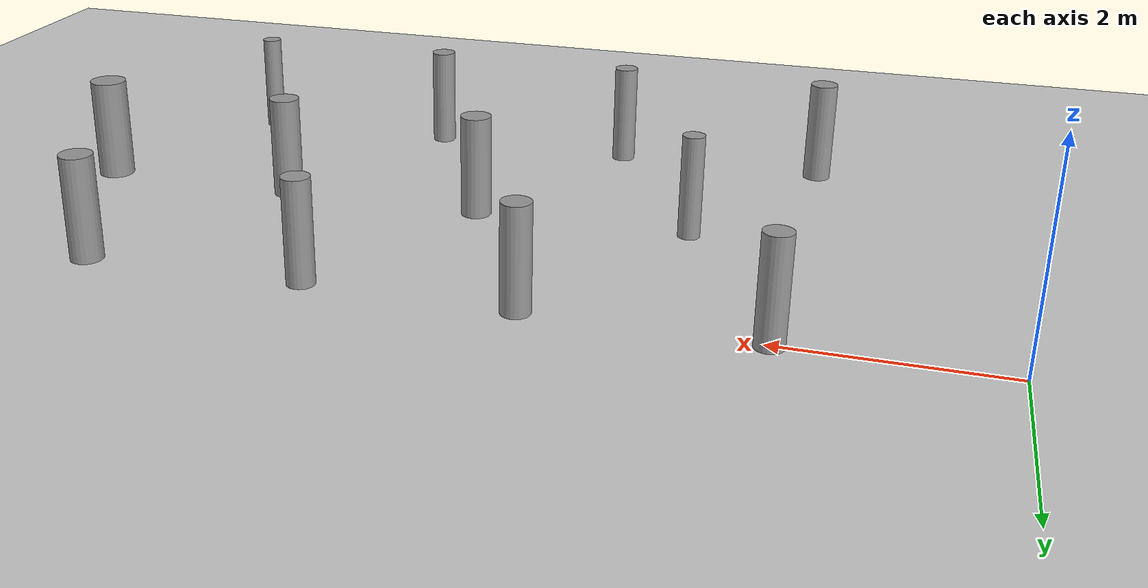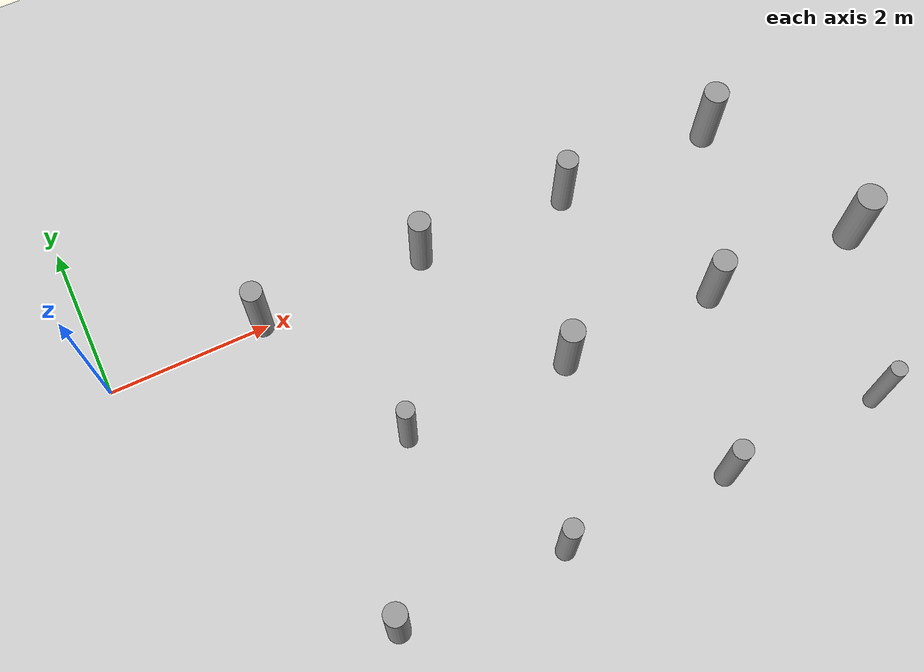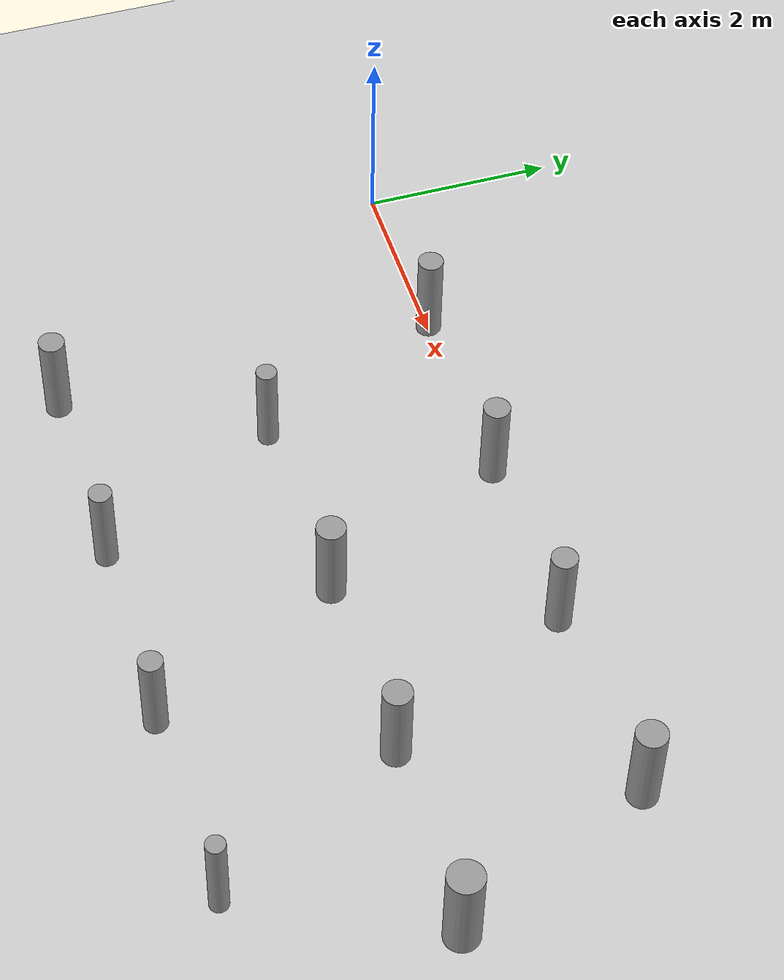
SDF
<sdf version="1.6">
 <world name="default">
  <light name="sun" type="directional">
   <pose>0 0 10 0 -0 0</pose>
   <diffuse>0.8 0.8 0.8 1</diffuse>
   <specular>0.1 0.1 0.1 1</specular>
   <attenuation>
    <range>1000</range>
    <constant>0.9</constant>
    <linear>0.01</linear>
    <quadratic>0.001</quadratic>
   </attenuation>
   <direction>-0.5 0.5 -1</direction>
  </light>
  <model name="ground_plane">
   <static>1</static>
   <link name="link">
    <collision name="collision">
     <geometry><plane><normal>0 0 1</normal><size>100 100</size></plane></geometry>
     <surface><friction><ode><mu>100</mu><mu2>50</mu2></ode></friction></surface>
    </collision>
    <visual name="visual">
     <cast_shadows>0</cast_shadows>
     <geometry><plane><normal>0 0 1</normal><size>100 100</size></plane></geometry>
     <material>
      <script><uri>file://media/materials/scripts/gazebo.material</uri><name>Gazebo/Grey</name></script>
     </material>
    </visual>
   </link>
  </model>
  <gravity>0 0 -9.8</gravity>
  <magnetic_field>6e-06 2.3e-05 -4.2e-05</magnetic_field>
  <atmosphere type="adiabatic"/>
  <physics name="default_physics" default="0" type="ode">
   <max_step_size>0.001</max_step_size>
   <real_time_factor>1</real_time_factor>
   <real_time_update_rate>1000</real_time_update_rate>
  </physics>
  <scene><ambient>0.4 0.4 0.4 1</ambient><background>0.7 0.7 0.7 1</background><shadows>1</shadows></scene>
  <spherical_coordinates>
   <surface_model>EARTH_WGS84</surface_model>
   <latitude_deg>0</latitude_deg>
   <longitude_deg>0</longitude_deg>
   <elevation>0</elevation>
   <heading_deg>0</heading_deg>
  </spherical_coordinates>
  <model name="unit_cylinder_0_5">
   <pose>1.94918 0.017503 0.499997 0 0 -3e-06</pose>
   <link name="link">
    <inertial>
     <mass>1</mass>
     <inertia><ixx>0.145833</ixx><ixy>0</ixy><ixz>0</ixz><iyy>0.145833</iyy><iyz>0</iyz><izz>0.125</izz></inertia>
    </inertial>
    <collision name="collision">
     <geometry><cylinder><radius>0.130999</radius><length>1</length></cylinder></geometry>
    </collision>
    <visual name="visual">
     <geometry><cylinder><radius>0.130999</radius><length>1</length></cylinder></geometry>
     <material>
      <script><name>Gazebo/Grey</name><uri>file://media/materials/scripts/gazebo.material</uri></script>
     </material>
    </visual>
   </link>
  </model>
  <model name="unit_cylinder_0_6">
   <pose>2.9391 -2.02718 0.499998 0 0 -7e-06</pose>
   <link name="link">
    <inertial>
     <mass>1</mass>
     <inertia><ixx>0.145833</ixx><ixy>0</ixy><ixz>0</ixz><iyy>0.145833</iyy><iyz>0</iyz><izz>0.125</izz></inertia>
    </inertial>
    <collision name="collision">
     <geometry><cylinder><radius>0.106456</radius><length>1</length></cylinder></geometry>
    </collision>
    <visual name="visual">
     <geometry><cylinder><radius>0.106456</radius><length>1</length></cylinder></geometry>
     <material>
      <script><name>Gazebo/Grey</name><uri>file://media/materials/scripts/gazebo.material</uri></script>
     </material>
    </visual>
   </link>
  </model>
  <model name="unit_cylinder_0_8">
   <pose>5.01725 -1.97681 0.499996 0 -0 0</pose>
   <link name="link">
    <inertial>
     <mass>1</mass>
     <inertia><ixx>0.145833</ixx><ixy>0</ixy><ixz>0</ixz><iyy>0.145833</iyy><iyz>0</iyz><izz>0.125</izz></inertia>
    </inertial>
    <collision name="collision">
     <geometry><cylinder><radius>0.146876</radius><length>1</length></cylinder></geometry>
    </collision>
    <visual name="visual">
     <geometry><cylinder><radius>0.146876</radius><length>1</length></cylinder></geometry>
     <material>
      <script><name>Gazebo/Grey</name><uri>file://media/materials/scripts/gazebo.material</uri></script>
     </material>
    </visual>
   </link>
  </model>
  <model name="unit_cylinder_0_9">
   <pose>4.04526 0.017581 0.499995 0 -0 3e-06</pose>
   <link name="link">
    <inertial>
     <mass>1</mass>
     <inertia><ixx>0.145833</ixx><ixy>0</ixy><ixz>0</ixz><iyy>0.145833</iyy><iyz>0</iyz><izz>0.125</izz></inertia>
    </inertial>
    <collision name="collision">
     <geometry><cylinder><radius>0.13639</radius><length>1</length></cylinder></geometry>
    </collision>
    <visual name="visual">
     <geometry><cylinder><radius>0.13639</radius><length>1</length></cylinder></geometry>
     <material>
      <script><name>Gazebo/Grey</name><uri>file://media/materials/scripts/gazebo.material</uri></script>
     </material>
    </visual>
   </link>
  </model>
  <model name="unit_cylinder_0_10">
   <pose>5.98918 0.017637 0.499996 0 0 -1e-06</pose>
   <link name="link">
    <inertial>
     <mass>1</mass>
     <inertia><ixx>0.145833</ixx><ixy>0</ixy><ixz>0</ixz><iyy>0.145833</iyy><iyz>0</iyz><izz>0.125</izz></inertia>
    </inertial>
    <collision name="collision">
     <geometry><cylinder><radius>0.131303</radius><length>1</length></cylinder></geometry>
    </collision>
    <visual name="visual">
     <geometry><cylinder><radius>0.131303</radius><length>1</length></cylinder></geometry>
     <material>
      <script><name>Gazebo/Grey</name><uri>file://media/materials/scripts/gazebo.material</uri></script>
     </material>
    </visual>
   </link>
  </model>
  <model name="unit_cylinder_0_11">
   <pose>6.99462 -1.94305 0.499995 0 -0 0</pose>
   <link name="link">
    <inertial>
     <mass>1</mass>
     <inertia><ixx>0.145833</ixx><ixy>0</ixy><ixz>0</ixz><iyy>0.145833</iyy><iyz>0</iyz><izz>0.125</izz></inertia>
    </inertial>
    <collision name="collision">
     <geometry><cylinder><radius>0.145289</radius><length>1</length></cylinder></geometry>
    </collision>
    <visual name="visual">
     <geometry><cylinder><radius>0.145289</radius><length>1</length></cylinder></geometry>
     <material>
      <script><name>Gazebo/Grey</name><uri>file://media/materials/scripts/gazebo.material</uri></script>
     </material>
    </visual>
   </link>
  </model>
  <model name="unit_cylinder_0_12">
   <pose>8.06711 0.084713 0.499996 0 -0 1e-06</pose>
   <link name="link">
    <inertial>
     <mass>1</mass>
     <inertia><ixx>0.145833</ixx><ixy>0</ixy><ixz>0</ixz><iyy>0.145833</iyy><iyz>0</iyz><izz>0.125</izz></inertia>
    </inertial>
    <collision name="collision">
     <geometry><cylinder><radius>0.15454</radius><length>1</length></cylinder></geometry>
    </collision>
    <visual name="visual">
     <geometry><cylinder><radius>0.15454</radius><length>1</length></cylinder></geometry>
     <material>
      <script><name>Gazebo/Grey</name><uri>file://media/materials/scripts/gazebo.material</uri></script>
     </material>
    </visual>
   </link>
  </model>
  <model name="unit_cylinder_0_13">
   <pose>8.97184 -1.9597 0.499995 0 -0 1e-06</pose>
   <link name="link">
    <inertial>
     <mass>1</mass>
     <inertia><ixx>0.145833</ixx><ixy>0</ixy><ixz>0</ixz><iyy>0.145833</iyy><iyz>0</iyz><izz>0.125</izz></inertia>
    </inertial>
    <collision name="collision">
     <geometry><cylinder><radius>0.177123</radius><length>1</length></cylinder></geometry>
    </collision>
    <visual name="visual">
     <geometry><cylinder><radius>0.177123</radius><length>1</length></cylinder></geometry>
     <material>
      <script><name>Gazebo/Grey</name><uri>file://media/materials/scripts/gazebo.material</uri></script>
     </material>
    </visual>
   </link>
  </model>
  <model name="unit_cylinder_0_14">
   <pose>1.93347 -3.98829 0.499995 0 -0 0</pose>
   <link name="link">
    <inertial>
     <mass>1</mass>
     <inertia><ixx>0.145833</ixx><ixy>0</ixy><ixz>0</ixz><iyy>0.145833</iyy><iyz>0</iyz><izz>0.125</izz></inertia>
    </inertial>
    <collision name="collision">
     <geometry><cylinder><radius>0.133914</radius><length>1</length></cylinder></geometry>
    </collision>
    <visual name="visual">
     <geometry><cylinder><radius>0.133914</radius><length>1</length></cylinder></geometry>
     <material>
      <script><name>Gazebo/Grey</name><uri>file://media/materials/scripts/gazebo.material</uri></script>
     </material>
    </visual>
   </link>
  </model>
  <model name="unit_cylinder_0_15">
   <pose>3.97818 -3.97127 0.499996 0 -0 3e-06</pose>
   <link name="link">
    <inertial>
     <mass>1</mass>
     <inertia><ixx>0.145833</ixx><ixy>0</ixy><ixz>0</ixz><iyy>0.145833</iyy><iyz>0</iyz><izz>0.125</izz></inertia>
    </inertial>
    <collision name="collision">
     <geometry><cylinder><radius>0.115996</radius><length>1</length></cylinder></geometry>
    </collision>
    <visual name="visual">
     <geometry><cylinder><radius>0.115996</radius><length>1</length></cylinder></geometry>
     <material>
      <script><name>Gazebo/Grey</name><uri>file://media/materials/scripts/gazebo.material</uri></script>
     </material>
    </visual>
   </link>
  </model>
  <model name="unit_cylinder_0_16">
   <pose>6.02268 -3.98772 0.499994 0 0 -1e-06</pose>
   <link name="link">
    <inertial>
     <mass>1</mass>
     <inertia><ixx>0.145833</ixx><ixy>0</ixy><ixz>0</ixz><iyy>0.145833</iyy><iyz>0</iyz><izz>0.125</izz></inertia>
    </inertial>
    <collision name="collision">
     <geometry><cylinder><radius>0.119915</radius><length>1</length></cylinder></geometry>
    </collision>
    <visual name="visual">
     <geometry><cylinder><radius>0.119915</radius><length>1</length></cylinder></geometry>
     <material>
      <script><name>Gazebo/Grey</name><uri>file://media/materials/scripts/gazebo.material</uri></script>
     </material>
    </visual>
   </link>
  </model>
  <model name="unit_cylinder_0_17">
   <pose>8.0503 -3.9205 0.499994 0 -0 9e-06</pose>
   <link name="link">
    <inertial>
     <mass>1</mass>
     <inertia><ixx>0.145833</ixx><ixy>0</ixy><ixz>0</ixz><iyy>0.145833</iyy><iyz>0</iyz><izz>0.125</izz></inertia>
    </inertial>
    <collision name="collision">
     <geometry><cylinder><radius>0.0963551</radius><length>1</length></cylinder></geometry>
    </collision>
    <visual name="visual">
     <geometry><cylinder><radius>0.0963551</radius><length>1</length></cylinder></geometry>
     <material>
      <script><name>Gazebo/Grey</name><uri>file://media/materials/scripts/gazebo.material</uri></script>
     </material>
    </visual>
   </link>
  </model>
 </world>
</sdf>
